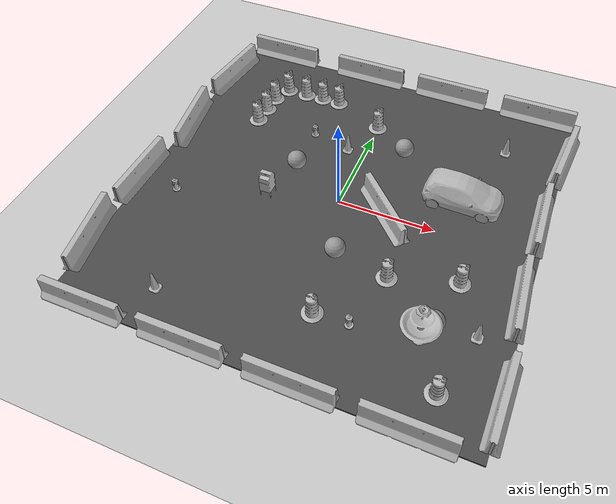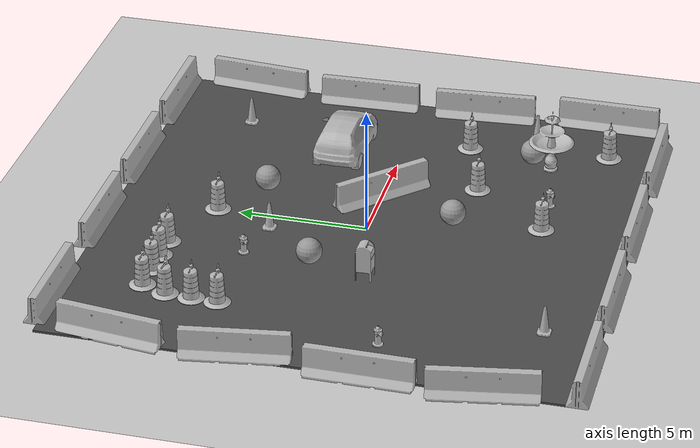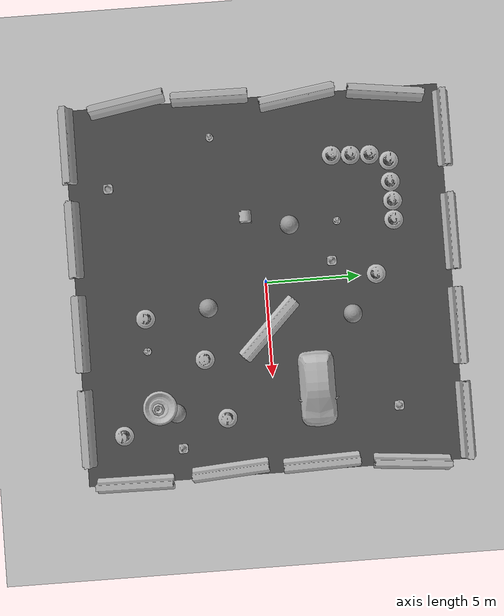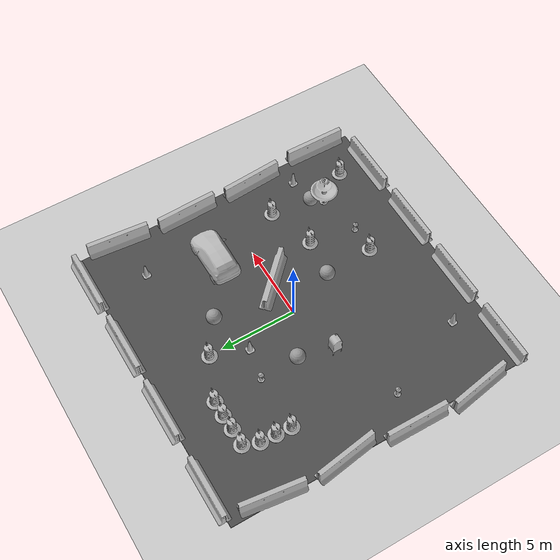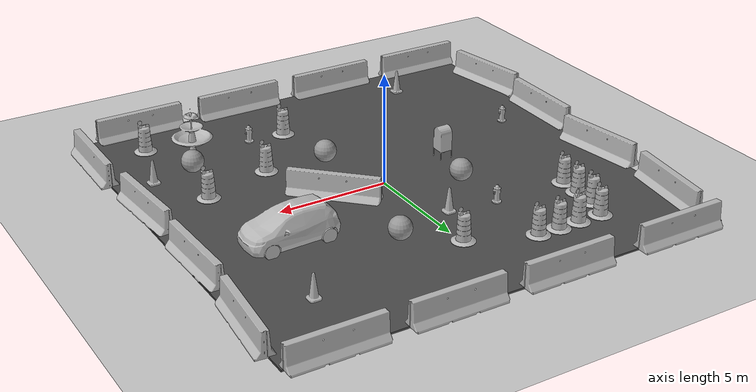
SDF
<sdf version="1.7">
 <world name="default">
  <light name="sun" type="directional">
   <pose>0 0 10 0 -0 0</pose>
   <diffuse>0.8 0.8 0.8 1</diffuse>
   <specular>0.2 0.2 0.2 1</specular>
   <attenuation>
    <range>1000</range>
    <constant>0.9</constant>
    <linear>0.01</linear>
    <quadratic>0.001</quadratic>
   </attenuation>
   <direction>-0.5 0.1 -0.9</direction>
   <spot><inner_angle>0</inner_angle><outer_angle>0</outer_angle><falloff>0</falloff></spot>
  </light>
  <model name="ground_plane">
   <static>1</static>
   <link name="link">
    <collision name="collision">
     <geometry><plane><normal>0 0 1</normal><size>100 100</size></plane></geometry>
     <surface><friction><ode><mu>100</mu><mu2>50</mu2></ode></friction></surface>
    </collision>
    <visual name="visual">
     <cast_shadows>0</cast_shadows>
     <geometry><plane><normal>0 0 1</normal><size>100 100</size></plane></geometry>
     <material>
      <script><uri>file://media/materials/scripts/gazebo.material</uri><name>Gazebo/Grey</name></script>
     </material>
    </visual>
    <velocity_decay><linear>0</linear><angular>0</angular></velocity_decay>
   </link>
  </model>
  <physics type="ode">
   <max_step_size>0.01</max_step_size>
   <real_time_factor>1</real_time_factor>
   <real_time_update_rate>100</real_time_update_rate>
  </physics>
  <scene><ambient>0.4 0.4 0.4 1</ambient><background>0.7 0.7 0.7 1</background><shadows>1</shadows></scene>
  <model name="jersey_barrier">
   <static>1</static>
   <link name="link">
    <visual name="visual">
     <geometry><mesh><uri>model://jersey_barrier/meshes/jersey_barrier.dae</uri></mesh></geometry>
    </visual>
    <collision name="upright">
     <pose>0 0 0.5715 0 -0 0</pose>
     <geometry><box><size>4.06542 0.3063 1.143</size></box></geometry>
    </collision>
    <collision name="base">
     <pose>0 0 0.032258 0 -0 0</pose>
     <geometry><box><size>4.06542 0.8107 0.064516</size></box></geometry>
    </collision>
    <collision name="base2">
     <pose>0 0 0.1 0 -0 0</pose>
     <geometry><box><size>4.06542 0.65 0.1</size></box></geometry>
    </collision>
    <collision name="base3">
     <pose>0 0 0.2 0 -0 0</pose>
     <geometry><box><size>4.06542 0.5 0.1</size></box></geometry>
    </collision>
    <collision name="left-angle">
     <pose>0 -0.224 0.2401 0.9 -0 0</pose>
     <geometry><box><size>4.06542 0.5 0.064516</size></box></geometry>
    </collision>
    <collision name="right-angle">
     <pose>0 0.224 0.2401 -0.9 0 0</pose>
     <geometry><box><size>4.06542 0.5 0.064516</size></box></geometry>
    </collision>
    <velocity_decay><linear>0</linear><angular>0</angular></velocity_decay>
   </link>
   <pose>-8 -10 0 0 -0 0</pose>
  </model>
  <model name="jersey_barrier_0">
   <static>1</static>
   <link name="link">
    <visual name="visual">
     <geometry><mesh><uri>model://jersey_barrier/meshes/jersey_barrier.dae</uri></mesh></geometry>
    </visual>
    <collision name="upright">
     <pose>0 0 0.5715 0 -0 0</pose>
     <geometry><box><size>4.06542 0.3063 1.143</size></box></geometry>
    </collision>
    <collision name="base">
     <pose>0 0 0.032258 0 -0 0</pose>
     <geometry><box><size>4.06542 0.8107 0.064516</size></box></geometry>
    </collision>
    <collision name="base2">
     <pose>0 0 0.1 0 -0 0</pose>
     <geometry><box><size>4.06542 0.65 0.1</size></box></geometry>
    </collision>
    <collision name="base3">
     <pose>0 0 0.2 0 -0 0</pose>
     <geometry><box><size>4.06542 0.5 0.1</size></box></geometry>
    </collision>
    <collision name="left-angle">
     <pose>0 -0.224 0.2401 0.9 -0 0</pose>
     <geometry><box><size>4.06542 0.5 0.064516</size></box></geometry>
    </collision>
    <collision name="right-angle">
     <pose>0 0.224 0.2401 -0.9 0 0</pose>
     <geometry><box><size>4.06542 0.5 0.064516</size></box></geometry>
    </collision>
    <velocity_decay><linear>0</linear><angular>0</angular></velocity_decay>
   </link>
   <pose>-3 -10 0 0 -0 0</pose>
  </model>
  <model name="jersey_barrier_1">
   <static>1</static>
   <link name="link">
    <visual name="visual">
     <geometry><mesh><uri>model://jersey_barrier/meshes/jersey_barrier.dae</uri></mesh></geometry>
    </visual>
    <collision name="upright">
     <pose>0 0 0.5715 0 -0 0</pose>
     <geometry><box><size>4.06542 0.3063 1.143</size></box></geometry>
    </collision>
    <collision name="base">
     <pose>0 0 0.032258 0 -0 0</pose>
     <geometry><box><size>4.06542 0.8107 0.064516</size></box></geometry>
    </collision>
    <collision name="base2">
     <pose>0 0 0.1 0 -0 0</pose>
     <geometry><box><size>4.06542 0.65 0.1</size></box></geometry>
    </collision>
    <collision name="base3">
     <pose>0 0 0.2 0 -0 0</pose>
     <geometry><box><size>4.06542 0.5 0.1</size></box></geometry>
    </collision>
    <collision name="left-angle">
     <pose>0 -0.224 0.2401 0.9 -0 0</pose>
     <geometry><box><size>4.06542 0.5 0.064516</size></box></geometry>
    </collision>
    <collision name="right-angle">
     <pose>0 0.224 0.2401 -0.9 0 0</pose>
     <geometry><box><size>4.06542 0.5 0.064516</size></box></geometry>
    </collision>
    <velocity_decay><linear>0</linear><angular>0</angular></velocity_decay>
   </link>
   <pose>2 -10 0 0 -0 0</pose>
  </model>
  <model name="jersey_barrier_2">
   <static>1</static>
   <link name="link">
    <visual name="visual">
     <geometry><mesh><uri>model://jersey_barrier/meshes/jersey_barrier.dae</uri></mesh></geometry>
    </visual>
    <collision name="upright">
     <pose>0 0 0.5715 0 -0 0</pose>
     <geometry><box><size>4.06542 0.3063 1.143</size></box></geometry>
    </collision>
    <collision name="base">
     <pose>0 0 0.032258 0 -0 0</pose>
     <geometry><box><size>4.06542 0.8107 0.064516</size></box></geometry>
    </collision>
    <collision name="base2">
     <pose>0 0 0.1 0 -0 0</pose>
     <geometry><box><size>4.06542 0.65 0.1</size></box></geometry>
    </collision>
    <collision name="base3">
     <pose>0 0 0.2 0 -0 0</pose>
     <geometry><box><size>4.06542 0.5 0.1</size></box></geometry>
    </collision>
    <collision name="left-angle">
     <pose>0 -0.224 0.2401 0.9 -0 0</pose>
     <geometry><box><size>4.06542 0.5 0.064516</size></box></geometry>
    </collision>
    <collision name="right-angle">
     <pose>0 0.224 0.2401 -0.9 0 0</pose>
     <geometry><box><size>4.06542 0.5 0.064516</size></box></geometry>
    </collision>
    <velocity_decay><linear>0</linear><angular>0</angular></velocity_decay>
   </link>
   <pose>7 -10 0 0 -0 0</pose>
  </model>
  <model name="jersey_barrier_3">
   <static>1</static>
   <link name="link">
    <visual name="visual">
     <geometry><mesh><uri>model://jersey_barrier/meshes/jersey_barrier.dae</uri></mesh></geometry>
    </visual>
    <collision name="upright">
     <pose>0 0 0.5715 0 -0 0</pose>
     <geometry><box><size>4.06542 0.3063 1.143</size></box></geometry>
    </collision>
    <collision name="base">
     <pose>0 0 0.032258 0 -0 0</pose>
     <geometry><box><size>4.06542 0.8107 0.064516</size></box></geometry>
    </collision>
    <collision name="base2">
     <pose>0 0 0.1 0 -0 0</pose>
     <geometry><box><size>4.06542 0.65 0.1</size></box></geometry>
    </collision>
    <collision name="base3">
     <pose>0 0 0.2 0 -0 0</pose>
     <geometry><box><size>4.06542 0.5 0.1</size></box></geometry>
    </collision>
    <collision name="left-angle">
     <pose>0 -0.224 0.2401 0.9 -0 0</pose>
     <geometry><box><size>4.06542 0.5 0.064516</size></box></geometry>
    </collision>
    <collision name="right-angle">
     <pose>0 0.224 0.2401 -0.9 0 0</pose>
     <geometry><box><size>4.06542 0.5 0.064516</size></box></geometry>
    </collision>
    <velocity_decay><linear>0</linear><angular>0</angular></velocity_decay>
   </link>
   <pose>-7.50675 10 0 0 -0 0</pose>
  </model>
  <model name="jersey_barrier_4">
   <static>1</static>
   <link name="link">
    <visual name="visual">
     <geometry><mesh><uri>model://jersey_barrier/meshes/jersey_barrier.dae</uri></mesh></geometry>
    </visual>
    <collision name="upright">
     <pose>0 0 0.5715 0 -0 0</pose>
     <geometry><box><size>4.06542 0.3063 1.143</size></box></geometry>
    </collision>
    <collision name="base">
     <pose>0 0 0.032258 0 -0 0</pose>
     <geometry><box><size>4.06542 0.8107 0.064516</size></box></geometry>
    </collision>
    <collision name="base2">
     <pose>0 0 0.1 0 -0 0</pose>
     <geometry><box><size>4.06542 0.65 0.1</size></box></geometry>
    </collision>
    <collision name="base3">
     <pose>0 0 0.2 0 -0 0</pose>
     <geometry><box><size>4.06542 0.5 0.1</size></box></geometry>
    </collision>
    <collision name="left-angle">
     <pose>0 -0.224 0.2401 0.9 -0 0</pose>
     <geometry><box><size>4.06542 0.5 0.064516</size></box></geometry>
    </collision>
    <collision name="right-angle">
     <pose>0 0.224 0.2401 -0.9 0 0</pose>
     <geometry><box><size>4.06542 0.5 0.064516</size></box></geometry>
    </collision>
    <velocity_decay><linear>0</linear><angular>0</angular></velocity_decay>
   </link>
   <pose>-2 10 0 0 -0 0</pose>
  </model>
  <model name="jersey_barrier_5">
   <static>1</static>
   <link name="link">
    <visual name="visual">
     <geometry><mesh><uri>model://jersey_barrier/meshes/jersey_barrier.dae</uri></mesh></geometry>
    </visual>
    <collision name="upright">
     <pose>0 0 0.5715 0 -0 0</pose>
     <geometry><box><size>4.06542 0.3063 1.143</size></box></geometry>
    </collision>
    <collision name="base">
     <pose>0 0 0.032258 0 -0 0</pose>
     <geometry><box><size>4.06542 0.8107 0.064516</size></box></geometry>
    </collision>
    <collision name="base2">
     <pose>0 0 0.1 0 -0 0</pose>
     <geometry><box><size>4.06542 0.65 0.1</size></box></geometry>
    </collision>
    <collision name="base3">
     <pose>0 0 0.2 0 -0 0</pose>
     <geometry><box><size>4.06542 0.5 0.1</size></box></geometry>
    </collision>
    <collision name="left-angle">
     <pose>0 -0.224 0.2401 0.9 -0 0</pose>
     <geometry><box><size>4.06542 0.5 0.064516</size></box></geometry>
    </collision>
    <collision name="right-angle">
     <pose>0 0.224 0.2401 -0.9 0 0</pose>
     <geometry><box><size>4.06542 0.5 0.064516</size></box></geometry>
    </collision>
    <velocity_decay><linear>0</linear><angular>0</angular></velocity_decay>
   </link>
   <pose>3 10 0 0 -0 0</pose>
  </model>
  <model name="jersey_barrier_6">
   <static>1</static>
   <link name="link">
    <visual name="visual">
     <geometry><mesh><uri>model://jersey_barrier/meshes/jersey_barrier.dae</uri></mesh></geometry>
    </visual>
    <collision name="upright">
     <pose>0 0 0.5715 0 -0 0</pose>
     <geometry><box><size>4.06542 0.3063 1.143</size></box></geometry>
    </collision>
    <collision name="base">
     <pose>0 0 0.032258 0 -0 0</pose>
     <geometry><box><size>4.06542 0.8107 0.064516</size></box></geometry>
    </collision>
    <collision name="base2">
     <pose>0 0 0.1 0 -0 0</pose>
     <geometry><box><size>4.06542 0.65 0.1</size></box></geometry>
    </collision>
    <collision name="base3">
     <pose>0 0 0.2 0 -0 0</pose>
     <geometry><box><size>4.06542 0.5 0.1</size></box></geometry>
    </collision>
    <collision name="left-angle">
     <pose>0 -0.224 0.2401 0.9 -0 0</pose>
     <geometry><box><size>4.06542 0.5 0.064516</size></box></geometry>
    </collision>
    <collision name="right-angle">
     <pose>0 0.224 0.2401 -0.9 0 0</pose>
     <geometry><box><size>4.06542 0.5 0.064516</size></box></geometry>
    </collision>
    <velocity_decay><linear>0</linear><angular>0</angular></velocity_decay>
   </link>
   <pose>8 10 0 0 -0 0</pose>
  </model>
  <model name="jersey_barrier_7">
   <static>1</static>
   <link name="link">
    <visual name="visual">
     <geometry><mesh><uri>model://jersey_barrier/meshes/jersey_barrier.dae</uri></mesh></geometry>
    </visual>
    <collision name="upright">
     <pose>0 0 0.5715 0 -0 0</pose>
     <geometry><box><size>4.06542 0.3063 1.143</size></box></geometry>
    </collision>
    <collision name="base">
     <pose>0 0 0.032258 0 -0 0</pose>
     <geometry><box><size>4.06542 0.8107 0.064516</size></box></geometry>
    </collision>
    <collision name="base2">
     <pose>0 0 0.1 0 -0 0</pose>
     <geometry><box><size>4.06542 0.65 0.1</size></box></geometry>
    </collision>
    <collision name="base3">
     <pose>0 0 0.2 0 -0 0</pose>
     <geometry><box><size>4.06542 0.5 0.1</size></box></geometry>
    </collision>
    <collision name="left-angle">
     <pose>0 -0.224 0.2401 0.9 -0 0</pose>
     <geometry><box><size>4.06542 0.5 0.064516</size></box></geometry>
    </collision>
    <collision name="right-angle">
     <pose>0 0.224 0.2401 -0.9 0 0</pose>
     <geometry><box><size>4.06542 0.5 0.064516</size></box></geometry>
    </collision>
    <velocity_decay><linear>0</linear><angular>0</angular></velocity_decay>
   </link>
   <pose>9.74902 -2.57759 0 0 -0 1.64</pose>
  </model>
  <model name="jersey_barrier_8">
   <static>1</static>
   <link name="link">
    <visual name="visual">
     <geometry><mesh><uri>model://jersey_barrier/meshes/jersey_barrier.dae</uri></mesh></geometry>
    </visual>
    <collision name="upright">
     <pose>0 0 0.5715 0 -0 0</pose>
     <geometry><box><size>4.06542 0.3063 1.143</size></box></geometry>
    </collision>
    <collision name="base">
     <pose>0 0 0.032258 0 -0 0</pose>
     <geometry><box><size>4.06542 0.8107 0.064516</size></box></geometry>
    </collision>
    <collision name="base2">
     <pose>0 0 0.1 0 -0 0</pose>
     <geometry><box><size>4.06542 0.65 0.1</size></box></geometry>
    </collision>
    <collision name="base3">
     <pose>0 0 0.2 0 -0 0</pose>
     <geometry><box><size>4.06542 0.5 0.1</size></box></geometry>
    </collision>
    <collision name="left-angle">
     <pose>0 -0.224 0.2401 0.9 -0 0</pose>
     <geometry><box><size>4.06542 0.5 0.064516</size></box></geometry>
    </collision>
    <collision name="right-angle">
     <pose>0 0.224 0.2401 -0.9 0 0</pose>
     <geometry><box><size>4.06542 0.5 0.064516</size></box></geometry>
    </collision>
    <velocity_decay><linear>0</linear><angular>0</angular></velocity_decay>
   </link>
   <pose>9.70141 2.24369 0 0 -0 1.6</pose>
  </model>
  <model name="jersey_barrier_9">
   <static>1</static>
   <link name="link">
    <visual name="visual">
     <geometry><mesh><uri>model://jersey_barrier/meshes/jersey_barrier.dae</uri></mesh></geometry>
    </visual>
    <collision name="upright">
     <pose>0 0 0.5715 0 -0 0</pose>
     <geometry><box><size>4.06542 0.3063 1.143</size></box></geometry>
    </collision>
    <collision name="base">
     <pose>0 0 0.032258 0 -0 0</pose>
     <geometry><box><size>4.06542 0.8107 0.064516</size></box></geometry>
    </collision>
    <collision name="base2">
     <pose>0 0 0.1 0 -0 0</pose>
     <geometry><box><size>4.06542 0.65 0.1</size></box></geometry>
    </collision>
    <collision name="base3">
     <pose>0 0 0.2 0 -0 0</pose>
     <geometry><box><size>4.06542 0.5 0.1</size></box></geometry>
    </collision>
    <collision name="left-angle">
     <pose>0 -0.224 0.2401 0.9 -0 0</pose>
     <geometry><box><size>4.06542 0.5 0.064516</size></box></geometry>
    </collision>
    <collision name="right-angle">
     <pose>0 0.224 0.2401 -0.9 0 0</pose>
     <geometry><box><size>4.06542 0.5 0.064516</size></box></geometry>
    </collision>
    <velocity_decay><linear>0</linear><angular>0</angular></velocity_decay>
   </link>
   <pose>-10.0607 -6.69856 0 0 0 -1.4</pose>
  </model>
  <model name="jersey_barrier_10">
   <static>1</static>
   <link name="link">
    <visual name="visual">
     <geometry><mesh><uri>model://jersey_barrier/meshes/jersey_barrier.dae</uri></mesh></geometry>
    </visual>
    <collision name="upright">
     <pose>0 0 0.5715 0 -0 0</pose>
     <geometry><box><size>4.06542 0.3063 1.143</size></box></geometry>
    </collision>
    <collision name="base">
     <pose>0 0 0.032258 0 -0 0</pose>
     <geometry><box><size>4.06542 0.8107 0.064516</size></box></geometry>
    </collision>
    <collision name="base2">
     <pose>0 0 0.1 0 -0 0</pose>
     <geometry><box><size>4.06542 0.65 0.1</size></box></geometry>
    </collision>
    <collision name="base3">
     <pose>0 0 0.2 0 -0 0</pose>
     <geometry><box><size>4.06542 0.5 0.1</size></box></geometry>
    </collision>
    <collision name="left-angle">
     <pose>0 -0.224 0.2401 0.9 -0 0</pose>
     <geometry><box><size>4.06542 0.5 0.064516</size></box></geometry>
    </collision>
    <collision name="right-angle">
     <pose>0 0.224 0.2401 -0.9 0 0</pose>
     <geometry><box><size>4.06542 0.5 0.064516</size></box></geometry>
    </collision>
    <velocity_decay><linear>0</linear><angular>0</angular></velocity_decay>
   </link>
   <pose>-10.0774 -2.27159 0 0 -0 1.56</pose>
  </model>
  <model name="jersey_barrier_11">
   <static>1</static>
   <link name="link">
    <visual name="visual">
     <geometry><mesh><uri>model://jersey_barrier/meshes/jersey_barrier.dae</uri></mesh></geometry>
    </visual>
    <collision name="upright">
     <pose>0 0 0.5715 0 -0 0</pose>
     <geometry><box><size>4.06542 0.3063 1.143</size></box></geometry>
    </collision>
    <collision name="base">
     <pose>0 0 0.032258 0 -0 0</pose>
     <geometry><box><size>4.06542 0.8107 0.064516</size></box></geometry>
    </collision>
    <collision name="base2">
     <pose>0 0 0.1 0 -0 0</pose>
     <geometry><box><size>4.06542 0.65 0.1</size></box></geometry>
    </collision>
    <collision name="base3">
     <pose>0 0 0.2 0 -0 0</pose>
     <geometry><box><size>4.06542 0.5 0.1</size></box></geometry>
    </collision>
    <collision name="left-angle">
     <pose>0 -0.224 0.2401 0.9 -0 0</pose>
     <geometry><box><size>4.06542 0.5 0.064516</size></box></geometry>
    </collision>
    <collision name="right-angle">
     <pose>0 0.224 0.2401 -0.9 0 0</pose>
     <geometry><box><size>4.06542 0.5 0.064516</size></box></geometry>
    </collision>
    <velocity_decay><linear>0</linear><angular>0</angular></velocity_decay>
   </link>
   <pose>-9.77013 2.34791 0 0 -0 1.72</pose>
  </model>
  <model name="jersey_barrier_12">
   <static>1</static>
   <link name="link">
    <visual name="visual">
     <geometry><mesh><uri>model://jersey_barrier/meshes/jersey_barrier.dae</uri></mesh></geometry>
    </visual>
    <collision name="upright">
     <pose>0 0 0.5715 0 -0 0</pose>
     <geometry><box><size>4.06542 0.3063 1.143</size></box></geometry>
    </collision>
    <collision name="base">
     <pose>0 0 0.032258 0 -0 0</pose>
     <geometry><box><size>4.06542 0.8107 0.064516</size></box></geometry>
    </collision>
    <collision name="base2">
     <pose>0 0 0.1 0 -0 0</pose>
     <geometry><box><size>4.06542 0.65 0.1</size></box></geometry>
    </collision>
    <collision name="base3">
     <pose>0 0 0.2 0 -0 0</pose>
     <geometry><box><size>4.06542 0.5 0.1</size></box></geometry>
    </collision>
    <collision name="left-angle">
     <pose>0 -0.224 0.2401 0.9 -0 0</pose>
     <geometry><box><size>4.06542 0.5 0.064516</size></box></geometry>
    </collision>
    <collision name="right-angle">
     <pose>0 0.224 0.2401 -0.9 0 0</pose>
     <geometry><box><size>4.06542 0.5 0.064516</size></box></geometry>
    </collision>
    <velocity_decay><linear>0</linear><angular>0</angular></velocity_decay>
   </link>
   <pose>10.0879 -7.62159 0 0 -0 1.56</pose>
  </model>
  <model name="jersey_barrier_13">
   <static>1</static>
   <link name="link">
    <visual name="visual">
     <geometry><mesh><uri>model://jersey_barrier/meshes/jersey_barrier.dae</uri></mesh></geometry>
    </visual>
    <collision name="upright">
     <pose>0 0 0.5715 0 -0 0</pose>
     <geometry><box><size>4.06542 0.3063 1.143</size></box></geometry>
    </collision>
    <collision name="base">
     <pose>0 0 0.032258 0 -0 0</pose>
     <geometry><box><size>4.06542 0.8107 0.064516</size></box></geometry>
    </collision>
    <collision name="base2">
     <pose>0 0 0.1 0 -0 0</pose>
     <geometry><box><size>4.06542 0.65 0.1</size></box></geometry>
    </collision>
    <collision name="base3">
     <pose>0 0 0.2 0 -0 0</pose>
     <geometry><box><size>4.06542 0.5 0.1</size></box></geometry>
    </collision>
    <collision name="left-angle">
     <pose>0 -0.224 0.2401 0.9 -0 0</pose>
     <geometry><box><size>4.06542 0.5 0.064516</size></box></geometry>
    </collision>
    <collision name="right-angle">
     <pose>0 0.224 0.2401 -0.9 0 0</pose>
     <geometry><box><size>4.06542 0.5 0.064516</size></box></geometry>
    </collision>
    <velocity_decay><linear>0</linear><angular>0</angular></velocity_decay>
   </link>
   <pose>10 7 0 0 -0 1.48</pose>
  </model>
  <model name="jersey_barrier_14">
   <static>1</static>
   <link name="link">
    <visual name="visual">
     <geometry><mesh><uri>model://jersey_barrier/meshes/jersey_barrier.dae</uri></mesh></geometry>
    </visual>
    <collision name="upright">
     <pose>0 0 0.5715 0 -0 0</pose>
     <geometry><box><size>4.06542 0.3063 1.143</size></box></geometry>
    </collision>
    <collision name="base">
     <pose>0 0 0.032258 0 -0 0</pose>
     <geometry><box><size>4.06542 0.8107 0.064516</size></box></geometry>
    </collision>
    <collision name="base2">
     <pose>0 0 0.1 0 -0 0</pose>
     <geometry><box><size>4.06542 0.65 0.1</size></box></geometry>
    </collision>
    <collision name="base3">
     <pose>0 0 0.2 0 -0 0</pose>
     <geometry><box><size>4.06542 0.5 0.1</size></box></geometry>
    </collision>
    <collision name="left-angle">
     <pose>0 -0.224 0.2401 0.9 -0 0</pose>
     <geometry><box><size>4.06542 0.5 0.064516</size></box></geometry>
    </collision>
    <collision name="right-angle">
     <pose>0 0.224 0.2401 -0.9 0 0</pose>
     <geometry><box><size>4.06542 0.5 0.064516</size></box></geometry>
    </collision>
    <velocity_decay><linear>0</linear><angular>0</angular></velocity_decay>
   </link>
   <pose>-9.64482 7.05946 0 0 -0 1.44</pose>
  </model>
  <model name="fire_hydrant">
   <static>1</static>
   <link name="link">
    <collision name="collision">
     <geometry><mesh><uri>model://fire_hydrant/meshes/fire_hydrant.dae</uri></mesh></geometry>
    </collision>
    <visual name="visual">
     <geometry><mesh><uri>model://fire_hydrant/meshes/fire_hydrant.dae</uri></mesh></geometry>
    </visual>
    <velocity_decay><linear>0</linear><angular>0</angular></velocity_decay>
   </link>
   <pose>3.18024 -6.51118 0 0 -0 0</pose>
  </model>
  <model name="fire_hydrant_0">
   <static>1</static>
   <link name="link">
    <collision name="collision">
     <geometry><mesh><uri>model://fire_hydrant/meshes/fire_hydrant.dae</uri></mesh></geometry>
    </collision>
    <visual name="visual">
     <geometry><mesh><uri>model://fire_hydrant/meshes/fire_hydrant.dae</uri></mesh></geometry>
    </visual>
    <velocity_decay><linear>0</linear><angular>0</angular></velocity_decay>
   </link>
   <pose>-3 4 0 0 -0 0</pose>
  </model>
  <model name="fire_hydrant_1">
   <static>1</static>
   <link name="link">
    <collision name="collision">
     <geometry><mesh><uri>model://fire_hydrant/meshes/fire_hydrant.dae</uri></mesh></geometry>
    </collision>
    <visual name="visual">
     <geometry><mesh><uri>model://fire_hydrant/meshes/fire_hydrant.dae</uri></mesh></geometry>
    </visual>
    <velocity_decay><linear>0</linear><angular>0</angular></velocity_decay>
   </link>
   <pose>-7.90686 -2.41363 0 0 -0 0</pose>
  </model>
  <model name="jersey_barrier_15">
   <static>1</static>
   <link name="link">
    <visual name="visual">
     <geometry><mesh><uri>model://jersey_barrier/meshes/jersey_barrier.dae</uri></mesh></geometry>
    </visual>
    <collision name="upright">
     <pose>0 0 0.5715 0 -0 0</pose>
     <geometry><box><size>4.06542 0.3063 1.143</size></box></geometry>
    </collision>
    <collision name="base">
     <pose>0 0 0.032258 0 -0 0</pose>
     <geometry><box><size>4.06542 0.8107 0.064516</size></box></geometry>
    </collision>
    <collision name="base2">
     <pose>0 0 0.1 0 -0 0</pose>
     <geometry><box><size>4.06542 0.65 0.1</size></box></geometry>
    </collision>
    <collision name="base3">
     <pose>0 0 0.2 0 -0 0</pose>
     <geometry><box><size>4.06542 0.5 0.1</size></box></geometry>
    </collision>
    <collision name="left-angle">
     <pose>0 -0.224 0.2401 0.9 -0 0</pose>
     <geometry><box><size>4.06542 0.5 0.064516</size></box></geometry>
    </collision>
    <collision name="right-angle">
     <pose>0 0.224 0.2401 -0.9 0 0</pose>
     <geometry><box><size>4.06542 0.5 0.064516</size></box></geometry>
    </collision>
    <velocity_decay><linear>0</linear><angular>0</angular></velocity_decay>
   </link>
   <pose>2.45495 0 0 0 -0 2.36</pose>
  </model>
  <model name="Construction Cone">
   <link name="link">
    <collision name="collision">
     <geometry>
      <mesh><scale>10 10 10</scale><uri>model://construction_cone/meshes/construction_cone.dae</uri></mesh>
     </geometry>
    </collision>
    <visual name="visual">
     <geometry>
      <mesh><scale>10 10 10</scale><uri>model://construction_cone/meshes/construction_cone.dae</uri></mesh>
     </geometry>
    </visual>
    <velocity_decay><linear>0</linear><angular>0</angular></velocity_decay>
    <inertial>
     <inertia><ixx>1</ixx><ixy>0</ixy><ixz>0</ixz><iyy>1</iyy><iyz>0</iyz><izz>1</izz></inertia>
     <mass>1</mass>
    </inertial>
   </link>
   <pose>-5.59121 -8 0.049102 3e-06 -1e-05 2e-06</pose>
   <static>0</static>
  </model>
  <model name="Construction Barrel">
   <link name="link">
    <inertial>
     <pose>0 0 0.4 0 -0 0</pose>
     <mass>500</mass>
     <inertia><ixx>51.2096</ixx><iyy>51.2096</iyy><izz>25</izz><ixy>0</ixy><ixz>0</ixz><iyz>0</iyz></inertia>
    </inertial>
    <collision name="collision">
     <geometry><mesh><uri>model://construction_barrel/meshes/construction_barrel.dae</uri></mesh></geometry>
    </collision>
    <visual name="visual">
     <geometry><mesh><uri>model://construction_barrel/meshes/construction_barrel.dae</uri></mesh></geometry>
    </visual>
    <velocity_decay><linear>0</linear><angular>0</angular></velocity_decay>
   </link>
   <pose>7.00008 -2.54628 0.049897 0.000434 -1.8e-05 0.000303</pose>
   <static>0</static>
  </model>
  <model name="Construction Cone_0">
   <link name="link">
    <collision name="collision">
     <geometry>
      <mesh><scale>10 10 10</scale><uri>model://construction_cone/meshes/construction_cone.dae</uri></mesh>
     </geometry>
    </collision>
    <visual name="visual">
     <geometry>
      <mesh><scale>10 10 10</scale><uri>model://construction_cone/meshes/construction_cone.dae</uri></mesh>
     </geometry>
    </visual>
    <velocity_decay><linear>0</linear><angular>0</angular></velocity_decay>
    <inertial>
     <inertia><ixx>1</ixx><ixy>0</ixy><ixz>0</ixz><iyy>1</iyy><iyz>0</iyz><izz>1</izz></inertia>
     <mass>1</mass>
    </inertial>
   </link>
   <pose>6.99685 6.55732 0.049102 3e-06 -1e-05 -0.00701</pose>
   <static>0</static>
  </model>
  <model name="Construction Barrel_0">
   <link name="link">
    <inertial>
     <pose>0 0 0.4 0 -0 0</pose>
     <mass>500</mass>
     <inertia><ixx>51.2096</ixx><iyy>51.2096</iyy><izz>25</izz><ixy>0</ixy><ixz>0</ixz><iyz>0</iyz></inertia>
    </inertial>
    <collision name="collision">
     <geometry><mesh><uri>model://construction_barrel/meshes/construction_barrel.dae</uri></mesh></geometry>
    </collision>
    <visual name="visual">
     <geometry><mesh><uri>model://construction_barrel/meshes/construction_barrel.dae</uri></mesh></geometry>
    </visual>
    <velocity_decay><linear>0</linear><angular>0</angular></velocity_decay>
   </link>
   <pose>1.4518 -6.51121 0.049909 -0.000179 -0.000358 -6e-05</pose>
   <static>0</static>
  </model>
  <model name="asphalt_plane">
   <static>1</static>
   <link name="link">
    <collision name="collision"><geometry><box><size>20 20 0.1</size></box></geometry></collision>
    <visual name="visual">
     <cast_shadows>0</cast_shadows>
     <geometry><box><size>20 20 0.1</size></box></geometry>
     <material>
      <script>
       <uri>model://asphalt_plane/materials/scripts</uri>
       <uri>model://asphalt_plane/materials/textures</uri>
       <name>vrc/asphalt</name>
      </script>
     </material>
    </visual>
    <velocity_decay><linear>0</linear><angular>0</angular></velocity_decay>
   </link>
   <pose>0.076733 -0.110379 0 0 -0 0</pose>
  </model>
  <model name="Construction Barrel_1">
   <link name="link">
    <inertial>
     <pose>0 0 0.4 0 -0 0</pose>
     <mass>500</mass>
     <inertia><ixx>51.2096</ixx><iyy>51.2096</iyy><izz>25</izz><ixy>0</ixy><ixz>0</ixz><iyz>0</iyz></inertia>
    </inertial>
    <collision name="collision">
     <geometry><mesh><uri>model://construction_barrel/meshes/construction_barrel.dae</uri></mesh></geometry>
    </collision>
    <visual name="visual">
     <geometry><mesh><uri>model://construction_barrel/meshes/construction_barrel.dae</uri></mesh></geometry>
    </visual>
    <velocity_decay><linear>0</linear><angular>0</angular></velocity_decay>
   </link>
   <pose>-6.50466 3.98279 0.049924 0.000344 6.1e-05 -0.009563</pose>
   <static>0</static>
  </model>
  <model name="Construction Barrel_2">
   <link name="link">
    <inertial>
     <pose>0 0 0.4 0 -0 0</pose>
     <mass>500</mass>
     <inertia><ixx>51.2096</ixx><iyy>51.2096</iyy><izz>25</izz><ixy>0</ixy><ixz>0</ixz><iyz>0</iyz></inertia>
    </inertial>
    <collision name="collision">
     <geometry><mesh><uri>model://construction_barrel/meshes/construction_barrel.dae</uri></mesh></geometry>
    </collision>
    <visual name="visual">
     <geometry><mesh><uri>model://construction_barrel/meshes/construction_barrel.dae</uri></mesh></geometry>
    </visual>
    <velocity_decay><linear>0</linear><angular>0</angular></velocity_decay>
   </link>
   <pose>-6.45062 4.99646 0.049903 -0.000191 -0.000372 0.064904</pose>
   <static>0</static>
  </model>
  <model name="Construction Barrel_3">
   <link name="link">
    <inertial>
     <pose>0 0 0.4 0 -0 0</pose>
     <mass>500</mass>
     <inertia><ixx>51.2096</ixx><iyy>51.2096</iyy><izz>25</izz><ixy>0</ixy><ixz>0</ixz><iyz>0</iyz></inertia>
    </inertial>
    <collision name="collision">
     <geometry><mesh><uri>model://construction_barrel/meshes/construction_barrel.dae</uri></mesh></geometry>
    </collision>
    <visual name="visual">
     <geometry><mesh><uri>model://construction_barrel/meshes/construction_barrel.dae</uri></mesh></geometry>
    </visual>
    <velocity_decay><linear>0</linear><angular>0</angular></velocity_decay>
   </link>
   <pose>-6.40169 6.0112 0.049863 -0.000144 -0.000499 -0.120747</pose>
   <static>0</static>
  </model>
  <model name="Construction Barrel_4">
   <link name="link">
    <inertial>
     <pose>0 0 0.4 0 -0 0</pose>
     <mass>500</mass>
     <inertia><ixx>51.2096</ixx><iyy>51.2096</iyy><izz>25</izz><ixy>0</ixy><ixz>0</ixz><iyz>0</iyz></inertia>
    </inertial>
    <collision name="collision">
     <geometry><mesh><uri>model://construction_barrel/meshes/construction_barrel.dae</uri></mesh></geometry>
    </collision>
    <visual name="visual">
     <geometry><mesh><uri>model://construction_barrel/meshes/construction_barrel.dae</uri></mesh></geometry>
    </visual>
    <velocity_decay><linear>0</linear><angular>0</angular></velocity_decay>
   </link>
   <pose>-6.0062 7.00897 0.049907 0.000391 8.3e-05 -0.049536</pose>
   <static>0</static>
  </model>
  <model name="Construction Barrel_5">
   <link name="link">
    <inertial>
     <pose>0 0 0.4 0 -0 0</pose>
     <mass>500</mass>
     <inertia><ixx>51.2096</ixx><iyy>51.2096</iyy><izz>25</izz><ixy>0</ixy><ixz>0</ixz><iyz>0</iyz></inertia>
    </inertial>
    <collision name="collision">
     <geometry><mesh><uri>model://construction_barrel/meshes/construction_barrel.dae</uri></mesh></geometry>
    </collision>
    <visual name="visual">
     <geometry><mesh><uri>model://construction_barrel/meshes/construction_barrel.dae</uri></mesh></geometry>
    </visual>
    <velocity_decay><linear>0</linear><angular>0</angular></velocity_decay>
   </link>
   <pose>-4.87581 7.00803 0.04987 0.000432 0.000241 0.14607</pose>
   <static>0</static>
  </model>
  <model name="Construction Barrel_6">
   <link name="link">
    <inertial>
     <pose>0 0 0.4 0 -0 0</pose>
     <mass>500</mass>
     <inertia><ixx>51.2096</ixx><iyy>51.2096</iyy><izz>25</izz><ixy>0</ixy><ixz>0</ixz><iyz>0</iyz></inertia>
    </inertial>
    <collision name="collision">
     <geometry><mesh><uri>model://construction_barrel/meshes/construction_barrel.dae</uri></mesh></geometry>
    </collision>
    <visual name="visual">
     <geometry><mesh><uri>model://construction_barrel/meshes/construction_barrel.dae</uri></mesh></geometry>
    </visual>
    <velocity_decay><linear>0</linear><angular>0</angular></velocity_decay>
   </link>
   <pose>-3.86089 7.04569 0.049851 -0.000163 -0.000478 0.034898</pose>
   <static>0</static>
  </model>
  <model name="Construction Barrel_7">
   <link name="link">
    <inertial>
     <pose>0 0 0.4 0 -0 0</pose>
     <mass>500</mass>
     <inertia><ixx>51.2096</ixx><iyy>51.2096</iyy><izz>25</izz><ixy>0</ixy><ixz>0</ixz><iyz>0</iyz></inertia>
    </inertial>
    <collision name="collision">
     <geometry><mesh><uri>model://construction_barrel/meshes/construction_barrel.dae</uri></mesh></geometry>
    </collision>
    <visual name="visual">
     <geometry><mesh><uri>model://construction_barrel/meshes/construction_barrel.dae</uri></mesh></geometry>
    </visual>
    <velocity_decay><linear>0</linear><angular>0</angular></velocity_decay>
   </link>
   <pose>-2.84385 7.03467 0.049891 -0.000214 -0.000397 0.003502</pose>
   <static>0</static>
  </model>
  <model name="Construction Cone_1">
   <link name="link">
    <collision name="collision">
     <geometry>
      <mesh><scale>10 10 10</scale><uri>model://construction_cone/meshes/construction_cone.dae</uri></mesh>
     </geometry>
    </collision>
    <visual name="visual">
     <geometry>
      <mesh><scale>10 10 10</scale><uri>model://construction_cone/meshes/construction_cone.dae</uri></mesh>
     </geometry>
    </visual>
    <velocity_decay><linear>0</linear><angular>0</angular></velocity_decay>
    <inertial>
     <inertia><ixx>1</ixx><ixy>0</ixy><ixz>0</ixz><iyy>1</iyy><iyz>0</iyz><izz>1</izz></inertia>
     <mass>1</mass>
    </inertial>
   </link>
   <pose>8.42887 -5 0.049102 3e-06 -1e-05 2e-06</pose>
   <static>0</static>
  </model>
  <gravity>0 0 -9.8</gravity>
  <magnetic_field>6e-06 2.3e-05 -4.2e-05</magnetic_field>
  <atmosphere type="adiabatic"/>
  <spherical_coordinates>
   <surface_model>EARTH_WGS84</surface_model>
   <latitude_deg>0</latitude_deg>
   <longitude_deg>0</longitude_deg>
   <elevation>0</elevation>
   <heading_deg>0</heading_deg>
  </spherical_coordinates>
  <model name="fountain">
   <static>1</static>
   <link name="link">
    <collision name="collision">
     <geometry><mesh><uri>model://fountain/meshes/fountain.dae</uri></mesh></geometry>
    </collision>
    <visual name="visual">
     <geometry><mesh><uri>model://fountain/meshes/fountain.dae</uri></mesh></geometry>
    </visual>
   </link>
   <pose>6.1491 -5.97971 0 0 -0 0</pose>
  </model>
  <model name="hatchback">
   <static>1</static>
   <link name="link">
    <collision name="collision">
     <pose>0 0 0 0 -0 1.5708</pose>
     <geometry>
      <mesh><scale>0.0254 0.0254 0.0254</scale><uri>model://hatchback/meshes/hatchback.obj</uri></mesh>
     </geometry>
    </collision>
    <visual name="visual">
     <pose>0 0 0 0 -0 1.5708</pose>
     <geometry>
      <mesh><scale>0.0254 0.0254 0.0254</scale><uri>model://hatchback/meshes/hatchback.obj</uri></mesh>
     </geometry>
    </visual>
   </link>
   <pose>5.42446 2.29864 0 0 -0 0</pose>
  </model>
  <model name="postbox">
   <static>1</static>
   <link name="link">
    <collision name="collision">
     <geometry><mesh><uri>model://postbox/meshes/postbox.dae</uri></mesh></geometry>
    </collision>
    <visual name="visual"><geometry><mesh><uri>model://postbox/meshes/postbox.dae</uri></mesh></geometry></visual>
   </link>
   <pose>-3.51372 -0.820975 0 0 -0 0</pose>
  </model>
  <model name="unit_sphere">
   <pose>1.12409 -3.12948 0.55 0 -0 0</pose>
   <link name="link">
    <inertial>
     <mass>1</mass>
     <inertia><ixx>0.1</ixx><ixy>0</ixy><ixz>0</ixz><iyy>0.1</iyy><iyz>0</iyz><izz>0.1</izz></inertia>
    </inertial>
    <collision name="collision"><geometry><sphere><radius>0.5</radius></sphere></geometry></collision>
    <visual name="visual">
     <geometry><sphere><radius>0.5</radius></sphere></geometry>
     <material>
      <script><name>Gazebo/Grey</name><uri>file://media/materials/scripts/gazebo.material</uri></script>
     </material>
    </visual>
   </link>
  </model>
  <model name="unit_sphere_0">
   <pose>1.97558 4.45099 0.55 0 -0 0</pose>
   <link name="link">
    <inertial>
     <mass>1</mass>
     <inertia><ixx>0.1</ixx><ixy>0</ixy><ixz>0</ixz><iyy>0.1</iyy><iyz>0</iyz><izz>0.1</izz></inertia>
    </inertial>
    <collision name="collision"><geometry><sphere><radius>0.5</radius></sphere></geometry></collision>
    <visual name="visual">
     <geometry><sphere><radius>0.5</radius></sphere></geometry>
     <material>
      <script><name>Gazebo/Grey</name><uri>file://media/materials/scripts/gazebo.material</uri></script>
     </material>
    </visual>
   </link>
  </model>
  <model name="Construction Cone_0_clone">
   <link name="link">
    <collision name="collision">
     <geometry>
      <mesh><scale>10 10 10</scale><uri>model://construction_cone/meshes/construction_cone.dae</uri></mesh>
     </geometry>
    </collision>
    <visual name="visual">
     <geometry>
      <mesh><scale>10 10 10</scale><uri>model://construction_cone/meshes/construction_cone.dae</uri></mesh>
     </geometry>
    </visual>
    <velocity_decay><linear>0</linear><angular>0</angular></velocity_decay>
    <inertial>
     <inertia><ixx>1</ixx><ixy>0</ixy><ixz>0</ixz><iyy>1</iyy><iyz>0</iyz><izz>1</izz></inertia>
     <mass>1</mass>
    </inertial>
   </link>
   <pose>-0.910784 3.5818 0.049102 3e-06 -1e-05 -0.00701</pose>
   <static>0</static>
  </model>
  <model name="Construction Barrel_clone">
   <link name="link">
    <inertial>
     <pose>0 0 0.4 0 -0 0</pose>
     <mass>500</mass>
     <inertia><ixx>51.2096</ixx><iyy>51.2096</iyy><izz>25</izz><ixy>0</ixy><ixz>0</ixz><iyz>0</iyz></inertia>
    </inertial>
    <collision name="collision">
     <geometry><mesh><uri>model://construction_barrel/meshes/construction_barrel.dae</uri></mesh></geometry>
    </collision>
    <visual name="visual">
     <geometry><mesh><uri>model://construction_barrel/meshes/construction_barrel.dae</uri></mesh></geometry>
    </visual>
    <velocity_decay><linear>0</linear><angular>0</angular></velocity_decay>
   </link>
   <pose>7.54281 -8.06745 0.049895 0.000441 -1.6e-05 0.000302</pose>
   <static>0</static>
  </model>
  <model name="Construction Barrel_clone_0">
   <link name="link">
    <inertial>
     <pose>0 0 0.4 0 -0 0</pose>
     <mass>500</mass>
     <inertia><ixx>51.2096</ixx><iyy>51.2096</iyy><izz>25</izz><ixy>0</ixy><ixz>0</ixz><iyz>0</iyz></inertia>
    </inertial>
    <collision name="collision">
     <geometry><mesh><uri>model://construction_barrel/meshes/construction_barrel.dae</uri></mesh></geometry>
    </collision>
    <visual name="visual">
     <geometry><mesh><uri>model://construction_barrel/meshes/construction_barrel.dae</uri></mesh></geometry>
    </visual>
    <velocity_decay><linear>0</linear><angular>0</angular></velocity_decay>
   </link>
   <pose>3.82617 -3.52166 0.049919 -0.00016 -0.000333 0.000309</pose>
   <static>0</static>
  </model>
  <model name="Construction Barrel_clone_1">
   <link name="link">
    <inertial>
     <pose>0 0 0.4 0 -0 0</pose>
     <mass>500</mass>
     <inertia><ixx>51.2096</ixx><iyy>51.2096</iyy><izz>25</izz><ixy>0</ixy><ixz>0</ixz><iyz>0</iyz></inertia>
    </inertial>
    <collision name="collision">
     <geometry><mesh><uri>model://construction_barrel/meshes/construction_barrel.dae</uri></mesh></geometry>
    </collision>
    <visual name="visual">
     <geometry><mesh><uri>model://construction_barrel/meshes/construction_barrel.dae</uri></mesh></geometry>
    </visual>
    <velocity_decay><linear>0</linear><angular>0</angular></velocity_decay>
   </link>
   <pose>-0.045485 5.88507 0.049888 0.000458 -1.2e-05 0.000315</pose>
   <static>0</static>
  </model>
  <model name="unit_sphere_1">
   <pose>-2.94559 1.46091 0.55 0 -0 0</pose>
   <link name="link">
    <inertial>
     <mass>1</mass>
     <inertia><ixx>0.1</ixx><ixy>0</ixy><ixz>0</ixz><iyy>0.1</iyy><iyz>0</iyz><izz>0.1</izz></inertia>
    </inertial>
    <collision name="collision"><geometry><sphere><radius>0.5</radius></sphere></geometry></collision>
    <visual name="visual">
     <geometry><sphere><radius>0.5</radius></sphere></geometry>
     <material>
      <script><name>Gazebo/Grey</name><uri>file://media/materials/scripts/gazebo.material</uri></script>
     </material>
    </visual>
   </link>
  </model>
  <model name="unit_sphere_2">
   <pose>6.52328 -5.19093 0.55 0 -0 0</pose>
   <link name="link">
    <inertial>
     <mass>1</mass>
     <inertia><ixx>0.1</ixx><ixy>0</ixy><ixz>0</ixz><iyy>0.1</iyy><iyz>0</iyz><izz>0.1</izz></inertia>
    </inertial>
    <collision name="collision"><geometry><sphere><radius>0.5</radius></sphere></geometry></collision>
    <visual name="visual">
     <geometry><sphere><radius>0.5</radius></sphere></geometry>
     <material>
      <script><name>Gazebo/Grey</name><uri>file://media/materials/scripts/gazebo.material</uri></script>
     </material>
    </visual>
   </link>
  </model>
 </world>
</sdf>
